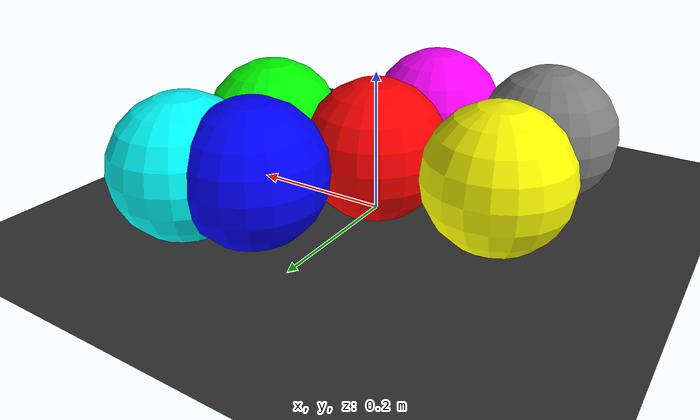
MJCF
<mujoco model="seven_contacts">
    <option gravity="0 0 -9.81" integrator="Euler" timestep="0.01"/>
    <size njmax="70" nconmax="70"/>

    <worldbody>
        <!-- Static floor -->
        <geom name="floor" type="plane" pos="0 0 0" size="50 50 0.1" rgba="0.2 0.2 0.2 1" condim="3"/>

        <!-- Cluster of 7 overlapping spheres -->
        <body name="sphere_0" pos="0 0 0.09">
            <geom type="sphere" size="0.1" rgba="1 0 0 1"/>
            <freejoint/>
        </body>

        <body name="sphere_1" pos="0.18 0 0.09">
            <geom type="sphere" size="0.1" rgba="0 1 0 1"/>
            <freejoint/>
        </body>

        <body name="sphere_2" pos="0.09 0.15 0.09">
            <geom type="sphere" size="0.1" rgba="0 0 1 1"/>
            <freejoint/>
        </body>

        <body name="sphere_3" pos="-0.18 0 0.09">
            <geom type="sphere" size="0.1" rgba="1 1 0 1"/>
            <freejoint/>
        </body>

        <body name="sphere_4" pos="0 -0.18 0.09">
            <geom type="sphere" size="0.1" rgba="1 0 1 1"/>
            <freejoint/>
        </body>

        <body name="sphere_5" pos="0.18 0.18 0.09">
            <geom type="sphere" size="0.1" rgba="0 1 1 1"/>
            <freejoint/>
        </body>

        <body name="sphere_6" pos="-0.18 -0.18 0.09">
            <geom type="sphere" size="0.1" rgba="0.5 0.5 0.5 1"/>
            <freejoint/>
        </body>
    </worldbody>
</mujoco>
